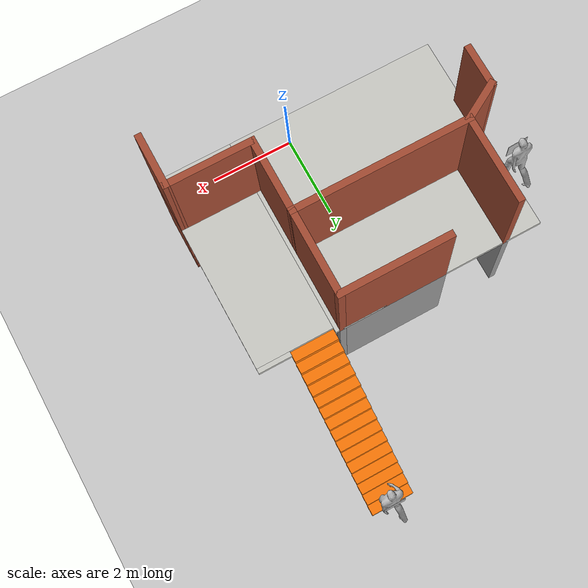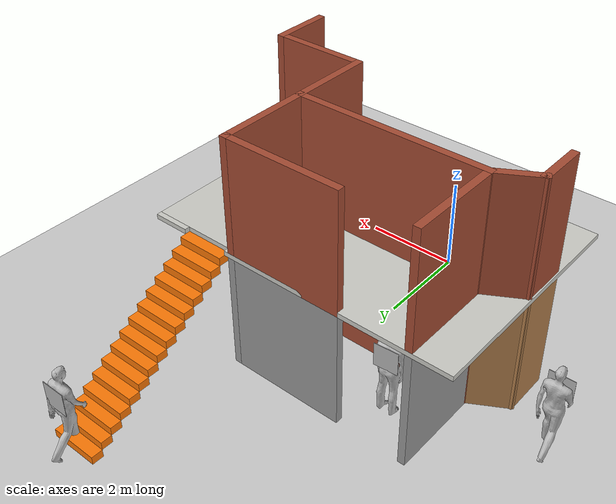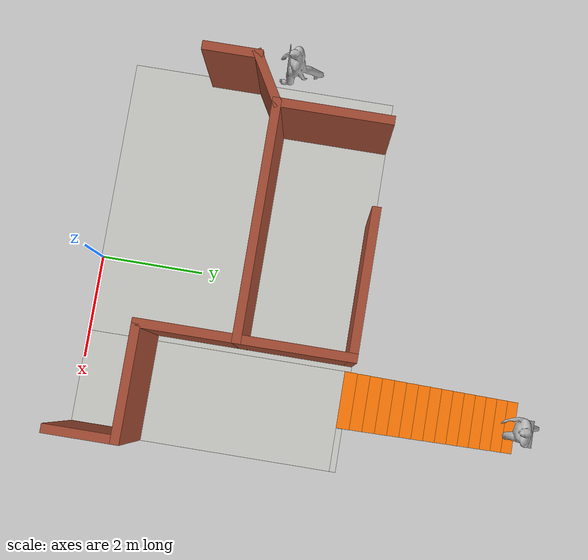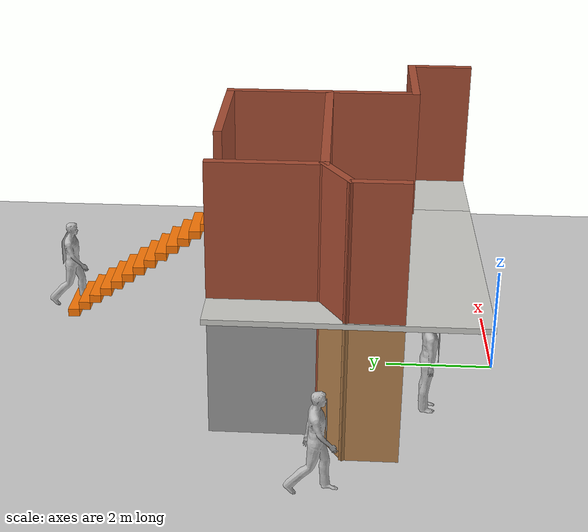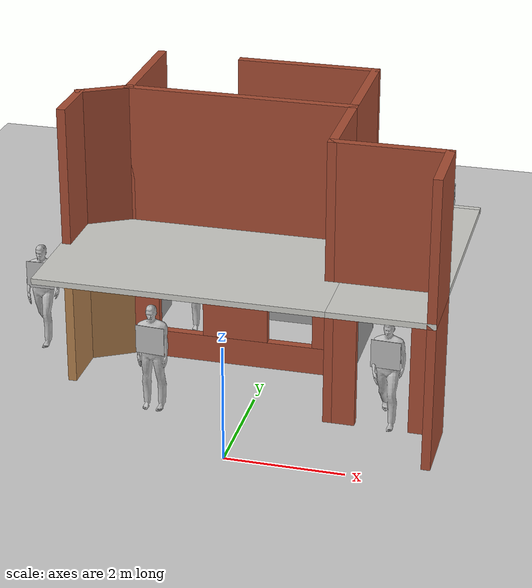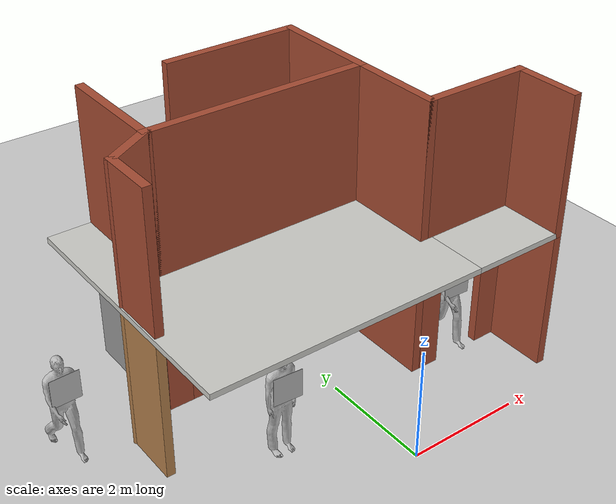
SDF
<sdf version="1.7">
 <world name="default">
  <light name="sun" type="directional">
   <pose>0 0 10 0 -0 0</pose>
   <diffuse>0.8 0.8 0.8 1</diffuse>
   <specular>0.2 0.2 0.2 1</specular>
   <attenuation>
    <range>1000</range>
    <constant>0.9</constant>
    <linear>0.01</linear>
    <quadratic>0.001</quadratic>
   </attenuation>
   <direction>-0.5 0.1 -0.9</direction>
   <spot><inner_angle>0</inner_angle><outer_angle>0</outer_angle><falloff>0</falloff></spot>
  </light>
  <model name="ground_plane">
   <static>1</static>
   <link name="link">
    <collision name="collision">
     <geometry><plane><normal>0 0 1</normal><size>100 100</size></plane></geometry>
     <surface>
      <contact><collide_bitmask>65535</collide_bitmask></contact>
      <friction><ode><mu>100</mu><mu2>50</mu2></ode></friction>
     </surface>
    </collision>
    <visual name="visual">
     <cast_shadows>0</cast_shadows>
     <geometry><plane><normal>0 0 1</normal><size>100 100</size></plane></geometry>
     <material>
      <script><uri>file://media/materials/scripts/gazebo.material</uri><name>Gazebo/Grey</name></script>
     </material>
    </visual>
   </link>
  </model>
  <gravity>0 0 -9.8</gravity>
  <magnetic_field>6e-06 2.3e-05 -4.2e-05</magnetic_field>
  <atmosphere type="adiabatic"/>
  <physics type="ode">
   <max_step_size>0.001</max_step_size>
   <real_time_factor>1</real_time_factor>
   <real_time_update_rate>1000</real_time_update_rate>
  </physics>
  <scene><ambient>0.4 0.4 0.4 1</ambient><background>0.7 0.7 0.7 1</background><shadows>1</shadows></scene>
  <spherical_coordinates>
   <surface_model>EARTH_WGS84</surface_model>
   <latitude_deg>0</latitude_deg>
   <longitude_deg>0</longitude_deg>
   <elevation>0</elevation>
   <heading_deg>0</heading_deg>
  </spherical_coordinates>
  <model name="project_world">
   <model name="mymodel">
    <pose>0.520959 0.586828 -0.493273 0 -0 0</pose>
    <link name="Floor_2">
     <pose>0 -1.69628 2.5 0 -0 0</pose>
     <visual name="Floor_2_Visual_0">
      <pose>-0.878545 0 0.05 0 -0 0</pose>
      <geometry><box><size>4.85648 4.7 0.1</size></box></geometry>
      <material>
       <script><uri>file://media/materials/scripts/gazebo.material</uri><name>Gazebo/CeilingTiled</name></script>
       <ambient>1 1 1 1</ambient>
      </material>
      <meta><layer>1</layer></meta>
     </visual>
     <collision name="Floor_2_Collision_0">
      <geometry><box><size>4.85648 4.7 0.1</size></box></geometry>
      <pose>-0.878545 0 0.05 0 -0 0</pose>
     </collision>
     <visual name="Floor_2_Visual_1">
      <pose>2.42824 -0.05372 0.05 0 -0 0</pose>
      <geometry><box><size>1.75709 4.59256 0.1</size></box></geometry>
      <material>
       <script><uri>file://media/materials/scripts/gazebo.material</uri><name>Gazebo/CeilingTiled</name></script>
       <ambient>1 1 1 1</ambient>
      </material>
      <meta><layer>1</layer></meta>
     </visual>
     <collision name="Floor_2_Collision_1">
      <geometry><box><size>1.75709 4.59256 0.1</size></box></geometry>
      <pose>2.42824 -0.05372 0.05 0 -0 0</pose>
     </collision>
     <visual name="Floor_2_Visual_2">
      <pose>2.92824 2.29628 0.05 0 -0 0</pose>
      <geometry><box><size>0.757089 0.10744 0.1</size></box></geometry>
      <material>
       <script><uri>file://media/materials/scripts/gazebo.material</uri><name>Gazebo/CeilingTiled</name></script>
       <ambient>1 1 1 1</ambient>
      </material>
      <meta><layer>1</layer></meta>
     </visual>
     <collision name="Floor_2_Collision_2">
      <geometry><box><size>0.757089 0.10744 0.1</size></box></geometry>
      <pose>2.92824 2.29628 0.05 0 -0 0</pose>
     </collision>
    </link>
    <link name="Stairs_2">
     <visual name="Stairs_2_Visual_0">
      <pose>2.0497 3.92961 0.083333 0 -0 0</pose>
      <geometry><box><size>1 0.233333 0.166667</size></box></geometry>
      <material>
       <script><uri>file://media/materials/scripts/gazebo.material</uri><name>Gazebo/Grey</name></script>
       <ambient>0.996078 0.47451 0.0196078 1</ambient>
      </material>
      <meta><layer>0</layer></meta>
     </visual>
     <collision name="Stairs_2_Collision_0">
      <geometry><box><size>1 0.233333 0.166667</size></box></geometry>
      <pose>2.0497 3.92961 0.083333 0 -0 0</pose>
     </collision>
     <visual name="Stairs_2_Visual_1">
      <pose>2.0497 3.69628 0.25 0 -0 0</pose>
      <geometry><box><size>1 0.233333 0.166667</size></box></geometry>
      <material>
       <script><uri>file://media/materials/scripts/gazebo.material</uri><name>Gazebo/Grey</name></script>
       <ambient>0.996078 0.47451 0.0196078 1</ambient>
      </material>
      <meta><layer>0</layer></meta>
     </visual>
     <collision name="Stairs_2_Collision_1">
      <geometry><box><size>1 0.233333 0.166667</size></box></geometry>
      <pose>2.0497 3.69628 0.25 0 -0 0</pose>
     </collision>
     <visual name="Stairs_2_Visual_2">
      <pose>2.0497 3.46295 0.416667 0 -0 0</pose>
      <geometry><box><size>1 0.233333 0.166667</size></box></geometry>
      <material>
       <script><uri>file://media/materials/scripts/gazebo.material</uri><name>Gazebo/Grey</name></script>
       <ambient>0.996078 0.47451 0.0196078 1</ambient>
      </material>
      <meta><layer>0</layer></meta>
     </visual>
     <collision name="Stairs_2_Collision_2">
      <geometry><box><size>1 0.233333 0.166667</size></box></geometry>
      <pose>2.0497 3.46295 0.416667 0 -0 0</pose>
     </collision>
     <visual name="Stairs_2_Visual_3">
      <pose>2.0497 3.22961 0.583333 0 -0 0</pose>
      <geometry><box><size>1 0.233333 0.166667</size></box></geometry>
      <material>
       <script><uri>file://media/materials/scripts/gazebo.material</uri><name>Gazebo/Grey</name></script>
       <ambient>0.996078 0.47451 0.0196078 1</ambient>
      </material>
      <meta><layer>0</layer></meta>
     </visual>
     <collision name="Stairs_2_Collision_3">
      <geometry><box><size>1 0.233333 0.166667</size></box></geometry>
      <pose>2.0497 3.22961 0.583333 0 -0 0</pose>
     </collision>
     <visual name="Stairs_2_Visual_4">
      <pose>2.0497 2.99628 0.75 0 -0 0</pose>
      <geometry><box><size>1 0.233333 0.166667</size></box></geometry>
      <material>
       <script><uri>file://media/materials/scripts/gazebo.material</uri><name>Gazebo/Grey</name></script>
       <ambient>0.996078 0.47451 0.0196078 1</ambient>
      </material>
      <meta><layer>0</layer></meta>
     </visual>
     <collision name="Stairs_2_Collision_4">
      <geometry><box><size>1 0.233333 0.166667</size></box></geometry>
      <pose>2.0497 2.99628 0.75 0 -0 0</pose>
     </collision>
     <visual name="Stairs_2_Visual_5">
      <pose>2.0497 2.76295 0.916667 0 -0 0</pose>
      <geometry><box><size>1 0.233333 0.166667</size></box></geometry>
      <material>
       <script><uri>file://media/materials/scripts/gazebo.material</uri><name>Gazebo/Grey</name></script>
       <ambient>0.996078 0.47451 0.0196078 1</ambient>
      </material>
      <meta><layer>0</layer></meta>
     </visual>
     <collision name="Stairs_2_Collision_5">
      <geometry><box><size>1 0.233333 0.166667</size></box></geometry>
      <pose>2.0497 2.76295 0.916667 0 -0 0</pose>
     </collision>
     <visual name="Stairs_2_Visual_6">
      <pose>2.0497 2.52961 1.08333 0 -0 0</pose>
      <geometry><box><size>1 0.233333 0.166667</size></box></geometry>
      <material>
       <script><uri>file://media/materials/scripts/gazebo.material</uri><name>Gazebo/Grey</name></script>
       <ambient>0.996078 0.47451 0.0196078 1</ambient>
      </material>
      <meta><layer>0</layer></meta>
     </visual>
     <collision name="Stairs_2_Collision_6">
      <geometry><box><size>1 0.233333 0.166667</size></box></geometry>
      <pose>2.0497 2.52961 1.08333 0 -0 0</pose>
     </collision>
     <visual name="Stairs_2_Visual_7">
      <pose>2.0497 2.29628 1.25 0 -0 0</pose>
      <geometry><box><size>1 0.233333 0.166667</size></box></geometry>
      <material>
       <script><uri>file://media/materials/scripts/gazebo.material</uri><name>Gazebo/Grey</name></script>
       <ambient>0.996078 0.47451 0.0196078 1</ambient>
      </material>
      <meta><layer>0</layer></meta>
     </visual>
     <collision name="Stairs_2_Collision_7">
      <geometry><box><size>1 0.233333 0.166667</size></box></geometry>
      <pose>2.0497 2.29628 1.25 0 -0 0</pose>
     </collision>
     <visual name="Stairs_2_Visual_8">
      <pose>2.0497 2.06295 1.41667 0 -0 0</pose>
      <geometry><box><size>1 0.233333 0.166667</size></box></geometry>
      <material>
       <script><uri>file://media/materials/scripts/gazebo.material</uri><name>Gazebo/Grey</name></script>
       <ambient>0.996078 0.47451 0.0196078 1</ambient>
      </material>
      <meta><layer>0</layer></meta>
     </visual>
     <collision name="Stairs_2_Collision_8">
      <geometry><box><size>1 0.233333 0.166667</size></box></geometry>
      <pose>2.0497 2.06295 1.41667 0 -0 0</pose>
     </collision>
     <visual name="Stairs_2_Visual_9">
      <pose>2.0497 1.82961 1.58333 0 -0 0</pose>
      <geometry><box><size>1 0.233333 0.166667</size></box></geometry>
      <material>
       <script><uri>file://media/materials/scripts/gazebo.material</uri><name>Gazebo/Grey</name></script>
       <ambient>0.996078 0.47451 0.0196078 1</ambient>
      </material>
      <meta><layer>0</layer></meta>
     </visual>
     <collision name="Stairs_2_Collision_9">
      <geometry><box><size>1 0.233333 0.166667</size></box></geometry>
      <pose>2.0497 1.82961 1.58333 0 -0 0</pose>
     </collision>
     <visual name="Stairs_2_Visual_10">
      <pose>2.0497 1.59628 1.75 0 -0 0</pose>
      <geometry><box><size>1 0.233333 0.166667</size></box></geometry>
      <material>
       <script><uri>file://media/materials/scripts/gazebo.material</uri><name>Gazebo/Grey</name></script>
       <ambient>0.996078 0.47451 0.0196078 1</ambient>
      </material>
      <meta><layer>0</layer></meta>
     </visual>
     <collision name="Stairs_2_Collision_10">
      <geometry><box><size>1 0.233333 0.166667</size></box></geometry>
      <pose>2.0497 1.59628 1.75 0 -0 0</pose>
     </collision>
     <visual name="Stairs_2_Visual_11">
      <pose>2.0497 1.36295 1.91667 0 -0 0</pose>
      <geometry><box><size>1 0.233333 0.166667</size></box></geometry>
      <material>
       <script><uri>file://media/materials/scripts/gazebo.material</uri><name>Gazebo/Grey</name></script>
       <ambient>0.996078 0.47451 0.0196078 1</ambient>
      </material>
      <meta><layer>0</layer></meta>
     </visual>
     <collision name="Stairs_2_Collision_11">
      <geometry><box><size>1 0.233333 0.166667</size></box></geometry>
      <pose>2.0497 1.36295 1.91667 0 -0 0</pose>
     </collision>
     <visual name="Stairs_2_Visual_12">
      <pose>2.0497 1.12961 2.08333 0 -0 0</pose>
      <geometry><box><size>1 0.233333 0.166667</size></box></geometry>
      <material>
       <script><uri>file://media/materials/scripts/gazebo.material</uri><name>Gazebo/Grey</name></script>
       <ambient>0.996078 0.47451 0.0196078 1</ambient>
      </material>
      <meta><layer>0</layer></meta>
     </visual>
     <collision name="Stairs_2_Collision_12">
      <geometry><box><size>1 0.233333 0.166667</size></box></geometry>
      <pose>2.0497 1.12961 2.08333 0 -0 0</pose>
     </collision>
     <visual name="Stairs_2_Visual_13">
      <pose>2.0497 0.89628 2.25 0 -0 0</pose>
      <geometry><box><size>1 0.233333 0.166667</size></box></geometry>
      <material>
       <script><uri>file://media/materials/scripts/gazebo.material</uri><name>Gazebo/Grey</name></script>
       <ambient>0.996078 0.47451 0.0196078 1</ambient>
      </material>
      <meta><layer>0</layer></meta>
     </visual>
     <collision name="Stairs_2_Collision_13">
      <geometry><box><size>1 0.233333 0.166667</size></box></geometry>
      <pose>2.0497 0.89628 2.25 0 -0 0</pose>
     </collision>
     <visual name="Stairs_2_Visual_14">
      <pose>2.0497 0.662947 2.41667 0 -0 0</pose>
      <geometry><box><size>1 0.233333 0.166667</size></box></geometry>
      <material>
       <script><uri>file://media/materials/scripts/gazebo.material</uri><name>Gazebo/Grey</name></script>
       <ambient>0.996078 0.47451 0.0196078 1</ambient>
      </material>
      <meta><layer>0</layer></meta>
     </visual>
     <collision name="Stairs_2_Collision_14">
      <geometry><box><size>1 0.233333 0.166667</size></box></geometry>
      <pose>2.0497 0.662947 2.41667 0 -0 0</pose>
     </collision>
    </link>
    <link name="Wall_0">
     <collision name="Wall_0_Collision">
      <geometry><box><size>1 0.15 2.5</size></box></geometry>
      <pose>0 0 1.25 0 -0 0</pose>
     </collision>
     <visual name="Wall_0_Visual">
      <pose>0 0 1.25 0 -0 0</pose>
      <geometry><box><size>1 0.15 2.5</size></box></geometry>
      <material>
       <script><uri>file://media/materials/scripts/gazebo.material</uri><name>Gazebo/Wood</name></script>
       <ambient>1 1 1 1</ambient>
      </material>
      <meta><layer>0</layer></meta>
     </visual>
     <pose>-3.20433 -2.12128 0 0 -0 1.5708</pose>
    </link>
    <link name="Wall_1">
     <collision name="Wall_1_Collision">
      <geometry><box><size>1 0.15 2.5</size></box></geometry>
      <pose>0 0 1.25 0 -0 0</pose>
     </collision>
     <visual name="Wall_1_Visual">
      <pose>0 0 1.25 0 -0 0</pose>
      <geometry><box><size>1 0.15 2.5</size></box></geometry>
      <material>
       <script><uri>file://media/materials/scripts/gazebo.material</uri><name>Gazebo/Wood</name></script>
       <ambient>1 1 1 1</ambient>
      </material>
      <meta><layer>0</layer></meta>
     </visual>
     <pose>-2.83627 -1.48378 0 0 -0 0.523599</pose>
    </link>
    <link name="Wall_10">
     <collision name="Wall_10_Collision">
      <geometry><box><size>2 0.15 2.5</size></box></geometry>
      <pose>0 0 1.25 0 -0 0</pose>
     </collision>
     <visual name="Wall_10_Visual">
      <pose>0 0 1.25 0 -0 0</pose>
      <geometry><box><size>2 0.15 2.5</size></box></geometry>
      <material>
       <script><uri>file://media/materials/scripts/gazebo.material</uri><name>Gazebo/Grey</name></script>
       <ambient>1 1 1 1</ambient>
      </material>
      <meta><layer>0</layer></meta>
     </visual>
     <pose>-2.46821 -0.34628 0 0 -0 1.5708</pose>
    </link>
    <link name="Wall_2">
     <pose>-0.543213 -1.27128 0 0 -0 0</pose>
     <visual name="Wall_2_Visual_0">
      <pose>-1.73056 0 1.25 0 -0 0</pose>
      <geometry><box><size>0.538878 0.15 2.5</size></box></geometry>
      <material>
       <script><uri>file://media/materials/scripts/gazebo.material</uri><name>Gazebo/Bricks</name></script>
       <ambient>1 1 1 1</ambient>
      </material>
      <meta><layer>0</layer></meta>
     </visual>
     <collision name="Wall_2_Collision_0">
      <geometry><box><size>0.538878 0.15 2.5</size></box></geometry>
      <pose>-1.73056 0 1.25 0 -0 0</pose>
     </collision>
     <visual name="Wall_2_Visual_1">
      <pose>0.269439 0 0.25 0 -0 0</pose>
      <geometry><box><size>3.46112 0.15 0.5</size></box></geometry>
      <material>
       <script><uri>file://media/materials/scripts/gazebo.material</uri><name>Gazebo/Bricks</name></script>
       <ambient>1 1 1 1</ambient>
      </material>
      <meta><layer>0</layer></meta>
     </visual>
     <collision name="Wall_2_Collision_1">
      <geometry><box><size>3.46112 0.15 0.5</size></box></geometry>
      <pose>0.269439 0 0.25 0 -0 0</pose>
     </collision>
     <visual name="Wall_2_Visual_2">
      <pose>-0.081122 0 1.5 0 -0 0</pose>
      <geometry><box><size>1.16 0.15 2</size></box></geometry>
      <material>
       <script><uri>file://media/materials/scripts/gazebo.material</uri><name>Gazebo/Bricks</name></script>
       <ambient>1 1 1 1</ambient>
      </material>
      <meta><layer>0</layer></meta>
     </visual>
     <collision name="Wall_2_Collision_2">
      <geometry><box><size>1.16 0.15 2</size></box></geometry>
      <pose>-0.081122 0 1.5 0 -0 0</pose>
     </collision>
     <visual name="Wall_2_Visual_3">
      <pose>1.64944 0 1.5 0 -0 0</pose>
      <geometry><box><size>0.701122 0.15 2</size></box></geometry>
      <material>
       <script><uri>file://media/materials/scripts/gazebo.material</uri><name>Gazebo/Bricks</name></script>
       <ambient>1 1 1 1</ambient>
      </material>
      <meta><layer>0</layer></meta>
     </visual>
     <collision name="Wall_2_Collision_3">
      <geometry><box><size>0.701122 0.15 2</size></box></geometry>
      <pose>1.64944 0 1.5 0 -0 0</pose>
     </collision>
     <visual name="Wall_2_Visual_4">
      <pose>-1.06112 0 1.9 0 -0 0</pose>
      <geometry><box><size>0.8 0.15 1.2</size></box></geometry>
      <material>
       <script><uri>file://media/materials/scripts/gazebo.material</uri><name>Gazebo/Bricks</name></script>
       <ambient>1 1 1 1</ambient>
      </material>
      <meta><layer>0</layer></meta>
     </visual>
     <collision name="Wall_2_Collision_4">
      <geometry><box><size>0.8 0.15 1.2</size></box></geometry>
      <pose>-1.06112 0 1.9 0 -0 0</pose>
     </collision>
     <visual name="Wall_2_Visual_5">
      <pose>0.898878 0 1.9 0 -0 0</pose>
      <geometry><box><size>0.8 0.15 1.2</size></box></geometry>
      <material>
       <script><uri>file://media/materials/scripts/gazebo.material</uri><name>Gazebo/Bricks</name></script>
       <ambient>1 1 1 1</ambient>
      </material>
      <meta><layer>0</layer></meta>
     </visual>
     <collision name="Wall_2_Collision_5">
      <geometry><box><size>0.8 0.15 1.2</size></box></geometry>
      <pose>0.898878 0 1.9 0 -0 0</pose>
     </collision>
    </link>
    <link name="Wall_3">
     <collision name="Wall_3_Collision">
      <geometry><box><size>1.75 0.15 2.5</size></box></geometry>
      <pose>0 0 1.25 0 -0 0</pose>
     </collision>
     <visual name="Wall_3_Visual">
      <pose>0 0 1.25 0 -0 0</pose>
      <geometry><box><size>1.75 0.15 2.5</size></box></geometry>
      <material>
       <script><uri>file://media/materials/scripts/gazebo.material</uri><name>Gazebo/Bricks</name></script>
       <ambient>1 1 1 1</ambient>
      </material>
      <meta><layer>0</layer></meta>
     </visual>
     <pose>1.38179 -2.07128 0 0 -0 -1.5708</pose>
    </link>
    <link name="Wall_30">
     <collision name="Wall_30_Collision">
      <geometry><box><size>1 0.15 2.5</size></box></geometry>
      <pose>0 0 1.25 0 -0 0</pose>
     </collision>
     <visual name="Wall_30_Visual">
      <pose>0 0 1.25 0 -0 0</pose>
      <geometry><box><size>1 0.15 2.5</size></box></geometry>
      <material>
       <script><uri>file://media/materials/scripts/gazebo.material</uri><name>Gazebo/Bricks</name></script>
       <ambient>1 1 1 1</ambient>
      </material>
      <meta><layer>1</layer></meta>
     </visual>
     <pose>-3.20433 -2.12128 2.5 0 -0 1.5708</pose>
    </link>
    <link name="Wall_31">
     <collision name="Wall_31_Collision">
      <geometry><box><size>1 0.15 2.5</size></box></geometry>
      <pose>0 0 1.25 0 -0 0</pose>
     </collision>
     <visual name="Wall_31_Visual">
      <pose>0 0 1.25 0 -0 0</pose>
      <geometry><box><size>1 0.15 2.5</size></box></geometry>
      <material>
       <script><uri>file://media/materials/scripts/gazebo.material</uri><name>Gazebo/Bricks</name></script>
       <ambient>1 1 1 1</ambient>
      </material>
      <meta><layer>1</layer></meta>
     </visual>
     <pose>-2.83627 -1.48378 2.5 0 -0 0.523599</pose>
    </link>
    <link name="Wall_32">
     <collision name="Wall_32_Collision">
      <geometry><box><size>4 0.15 2.5</size></box></geometry>
      <pose>0 0 1.25 0 -0 0</pose>
     </collision>
     <visual name="Wall_32_Visual">
      <pose>0 0 1.25 0 -0 0</pose>
      <geometry><box><size>4 0.15 2.5</size></box></geometry>
      <material>
       <script><uri>file://media/materials/scripts/gazebo.material</uri><name>Gazebo/Bricks</name></script>
       <ambient>1 1 1 1</ambient>
      </material>
      <meta><layer>1</layer></meta>
     </visual>
     <pose>-0.543213 -1.27128 2.5 0 -0 0</pose>
    </link>
    <link name="Wall_33">
     <collision name="Wall_33_Collision">
      <geometry><box><size>1.75 0.15 2.5</size></box></geometry>
      <pose>0 0 1.25 0 -0 0</pose>
     </collision>
     <visual name="Wall_33_Visual">
      <pose>0 0 1.25 0 -0 0</pose>
      <geometry><box><size>1.75 0.15 2.5</size></box></geometry>
      <material>
       <script><uri>file://media/materials/scripts/gazebo.material</uri><name>Gazebo/Bricks</name></script>
       <ambient>1 1 1 1</ambient>
      </material>
      <meta><layer>1</layer></meta>
     </visual>
     <pose>1.38179 -2.07128 2.5 0 -0 -1.5708</pose>
    </link>
    <link name="Wall_34">
     <collision name="Wall_34_Collision">
      <geometry><box><size>2 0.15 2.5</size></box></geometry>
      <pose>0 0 1.25 0 -0 0</pose>
     </collision>
     <visual name="Wall_34_Visual">
      <pose>0 0 1.25 0 -0 0</pose>
      <geometry><box><size>2 0.15 2.5</size></box></geometry>
      <material>
       <script><uri>file://media/materials/scripts/gazebo.material</uri><name>Gazebo/Bricks</name></script>
       <ambient>1 1 1 1</ambient>
      </material>
      <meta><layer>1</layer></meta>
     </visual>
     <pose>2.30679 -2.87128 2.5 0 -0 0</pose>
    </link>
    <link name="Wall_35">
     <collision name="Wall_35_Collision">
      <geometry><box><size>1.25 0.15 2.5</size></box></geometry>
      <pose>0 0 1.25 0 -0 0</pose>
     </collision>
     <visual name="Wall_35_Visual">
      <pose>0 0 1.25 0 -0 0</pose>
      <geometry><box><size>1.25 0.15 2.5</size></box></geometry>
      <material>
       <script><uri>file://media/materials/scripts/gazebo.material</uri><name>Gazebo/Bricks</name></script>
       <ambient>1 1 1 1</ambient>
      </material>
      <meta><layer>1</layer></meta>
     </visual>
     <pose>3.23179 -3.42128 2.5 0 -0 -1.5708</pose>
    </link>
    <link name="Wall_36">
     <collision name="Wall_36_Collision">
      <geometry><box><size>2 0.15 2.5</size></box></geometry>
      <pose>0 0 1.25 0 -0 0</pose>
     </collision>
     <visual name="Wall_36_Visual">
      <pose>0 0 1.25 0 -0 0</pose>
      <geometry><box><size>2 0.15 2.5</size></box></geometry>
      <material>
       <script><uri>file://media/materials/scripts/gazebo.material</uri><name>Gazebo/Bricks</name></script>
       <ambient>1 1 1 1</ambient>
      </material>
      <meta><layer>1</layer></meta>
     </visual>
     <pose>1.38179 -0.34628 2.5 0 -0 1.5708</pose>
    </link>
    <link name="Wall_37">
     <collision name="Wall_37_Collision">
      <geometry><box><size>2.5 0.15 2.5</size></box></geometry>
      <pose>0 0 1.25 0 -0 0</pose>
     </collision>
     <visual name="Wall_37_Visual">
      <pose>0 0 1.25 0 -0 0</pose>
      <geometry><box><size>2.5 0.15 2.5</size></box></geometry>
      <material>
       <script><uri>file://media/materials/scripts/gazebo.material</uri><name>Gazebo/Bricks</name></script>
       <ambient>1 1 1 1</ambient>
      </material>
      <meta><layer>1</layer></meta>
     </visual>
     <pose>0.206787 0.57872 2.5 0 -0 3.14159</pose>
    </link>
    <link name="Wall_38">
     <collision name="Wall_38_Collision">
      <geometry><box><size>2 0.15 2.5</size></box></geometry>
      <pose>0 0 1.25 0 -0 0</pose>
     </collision>
     <visual name="Wall_38_Visual">
      <pose>0 0 1.25 0 -0 0</pose>
      <geometry><box><size>2 0.15 2.5</size></box></geometry>
      <material>
       <script><uri>file://media/materials/scripts/gazebo.material</uri><name>Gazebo/Bricks</name></script>
       <ambient>1 1 1 1</ambient>
      </material>
      <meta><layer>1</layer></meta>
     </visual>
     <pose>-2.46821 -0.34628 2.5 0 -0 1.5708</pose>
    </link>
    <link name="Wall_4">
     <pose>2.30679 -2.87128 0 0 -0 0</pose>
     <visual name="Wall_4_Visual_0">
      <pose>-0.730561 0 1.25 0 -0 0</pose>
      <geometry><box><size>0.538878 0.15 2.5</size></box></geometry>
      <material>
       <script><uri>file://media/materials/scripts/gazebo.material</uri><name>Gazebo/Bricks</name></script>
       <ambient>1 1 1 1</ambient>
      </material>
      <meta><layer>0</layer></meta>
     </visual>
     <collision name="Wall_4_Collision_0">
      <geometry><box><size>0.538878 0.15 2.5</size></box></geometry>
      <pose>-0.730561 0 1.25 0 -0 0</pose>
     </collision>
     <visual name="Wall_4_Visual_1">
      <pose>0.719439 0 1.25 0 -0 0</pose>
      <geometry><box><size>0.561122 0.15 2.5</size></box></geometry>
      <material>
       <script><uri>file://media/materials/scripts/gazebo.material</uri><name>Gazebo/Bricks</name></script>
       <ambient>1 1 1 1</ambient>
      </material>
      <meta><layer>0</layer></meta>
     </visual>
     <collision name="Wall_4_Collision_1">
      <geometry><box><size>0.561122 0.15 2.5</size></box></geometry>
      <pose>0.719439 0 1.25 0 -0 0</pose>
     </collision>
     <visual name="Wall_4_Visual_2">
      <pose>-0.011122 0 2.25 0 -0 0</pose>
      <geometry><box><size>0.9 0.15 0.5</size></box></geometry>
      <material>
       <script><uri>file://media/materials/scripts/gazebo.material</uri><name>Gazebo/Bricks</name></script>
       <ambient>1 1 1 1</ambient>
      </material>
      <meta><layer>0</layer></meta>
     </visual>
     <collision name="Wall_4_Collision_2">
      <geometry><box><size>0.9 0.15 0.5</size></box></geometry>
      <pose>-0.011122 0 2.25 0 -0 0</pose>
     </collision>
    </link>
    <link name="Wall_5">
     <collision name="Wall_5_Collision">
      <geometry><box><size>1.25 0.15 2.5</size></box></geometry>
      <pose>0 0 1.25 0 -0 0</pose>
     </collision>
     <visual name="Wall_5_Visual">
      <pose>0 0 1.25 0 -0 0</pose>
      <geometry><box><size>1.25 0.15 2.5</size></box></geometry>
      <material>
       <script><uri>file://media/materials/scripts/gazebo.material</uri><name>Gazebo/Bricks</name></script>
       <ambient>1 1 1 1</ambient>
      </material>
      <meta><layer>0</layer></meta>
     </visual>
     <pose>3.23179 -3.42128 0 0 -0 -1.5708</pose>
    </link>
    <link name="Wall_7">
     <collision name="Wall_7_Collision">
      <geometry><box><size>2 0.15 2.5</size></box></geometry>
      <pose>0 0 1.25 0 -0 0</pose>
     </collision>
     <visual name="Wall_7_Visual">
      <pose>0 0 1.25 0 -0 0</pose>
      <geometry><box><size>2 0.15 2.5</size></box></geometry>
      <material>
       <script><uri>file://media/materials/scripts/gazebo.material</uri><name>Gazebo/Grey</name></script>
       <ambient>1 1 1 1</ambient>
      </material>
      <meta><layer>0</layer></meta>
     </visual>
     <pose>1.38179 -0.34628 0 0 -0 1.5708</pose>
    </link>
    <link name="Wall_8">
     <collision name="Wall_8_Collision">
      <geometry><box><size>2.5 0.15 2.5</size></box></geometry>
      <pose>0 0 1.25 0 -0 0</pose>
     </collision>
     <visual name="Wall_8_Visual">
      <pose>0 0 1.25 0 -0 0</pose>
      <geometry><box><size>2.5 0.15 2.5</size></box></geometry>
      <material>
       <script><uri>file://media/materials/scripts/gazebo.material</uri><name>Gazebo/Grey</name></script>
       <ambient>1 1 1 1</ambient>
      </material>
      <meta><layer>0</layer></meta>
     </visual>
     <pose>0.206787 0.57872 0 0 -0 3.14159</pose>
    </link>
    <static>1</static>
   </model>
   <model name="person_standing">
    <link name="link">
     <inertial>
      <pose>0 -0.1 0.95 0 -0 0</pose>
      <mass>80</mass>
      <inertia><ixx>24.88</ixx><ixy>0</ixy><ixz>0</ixz><iyy>25.73</iyy><iyz>0</iyz><izz>2.48</izz></inertia>
     </inertial>
     <collision name="bottom">
      <pose>0 -0.1 0.01 0 -0 0</pose>
      <geometry><box><size>0.5 0.35 0.02</size></box></geometry>
     </collision>
     <collision name="person">
      <pose>0 0 0.02 0.04 -0 0</pose>
      <geometry><mesh><uri>model://person_standing/meshes/standing.dae</uri></mesh></geometry>
     </collision>
     <visual name="visual">
      <pose>0 0 0.02 0.04 -0 0</pose>
      <geometry><mesh><uri>model://person_standing/meshes/standing.dae</uri></mesh></geometry>
     </visual>
    </link>
    <pose>-1.0408 -2.4929 -0.493273 0 -0 0</pose>
   </model>
   <model name="person_standing_0">
    <link name="link">
     <inertial>
      <pose>0 -0.1 0.95 0 -0 0</pose>
      <mass>80</mass>
      <inertia><ixx>24.88</ixx><ixy>0</ixy><ixz>0</ixz><iyy>25.73</iyy><iyz>0</iyz><izz>2.48</izz></inertia>
     </inertial>
     <collision name="bottom">
      <pose>0 -0.1 0.01 0 -0 0</pose>
      <geometry><box><size>0.5 0.35 0.02</size></box></geometry>
     </collision>
     <collision name="person">
      <pose>0 0 0.02 0.04 -0 0</pose>
      <geometry><mesh><uri>model://person_standing/meshes/standing.dae</uri></mesh></geometry>
     </collision>
     <visual name="visual">
      <pose>0 0 0.02 0.04 -0 0</pose>
      <geometry><mesh><uri>model://person_standing/meshes/standing.dae</uri></mesh></geometry>
     </visual>
    </link>
    <pose>-1.03623 0.480798 -0.493273 0 -0 0</pose>
   </model>
   <model name="person_walking">
    <link name="link">
     <inertial>
      <pose>0 0 0.95 0 -0 0</pose>
      <mass>80</mass>
      <inertia><ixx>27.82</ixx><ixy>0</ixy><ixz>0</ixz><iyy>24.88</iyy><iyz>0</iyz><izz>4.57</izz></inertia>
     </inertial>
     <collision name="bottom">
      <pose>0 0 0.01 0 -0 0</pose>
      <geometry><box><size>0.35 0.75 0.02</size></box></geometry>
     </collision>
     <collision name="person">
      <pose>0 0 -0.02 0 -0 0</pose>
      <geometry><mesh><uri>model://person_walking/meshes/walking.dae</uri></mesh></geometry>
     </collision>
     <visual name="visual">
      <pose>0 0 -0.02 0 -0 0</pose>
      <geometry><mesh><uri>model://person_walking/meshes/walking.dae</uri></mesh></geometry>
     </visual>
    </link>
    <pose>-3.67752 -0.6323 -0.493273 0 -0 0</pose>
   </model>
   <model name="person_walking_0">
    <link name="link">
     <inertial>
      <pose>0 0 0.95 0 -0 0</pose>
      <mass>80</mass>
      <inertia><ixx>27.82</ixx><ixy>0</ixy><ixz>0</ixz><iyy>24.88</iyy><iyz>0</iyz><izz>4.57</izz></inertia>
     </inertial>
     <collision name="bottom">
      <pose>0 0 0.01 0 -0 0</pose>
      <geometry><box><size>0.35 0.75 0.02</size></box></geometry>
     </collision>
     <collision name="person">
      <pose>0 0 -0.02 0 -0 0</pose>
      <geometry><mesh><uri>model://person_walking/meshes/walking.dae</uri></mesh></geometry>
     </collision>
     <visual name="visual">
      <pose>0 0 -0.02 0 -0 0</pose>
      <geometry><mesh><uri>model://person_walking/meshes/walking.dae</uri></mesh></geometry>
     </visual>
    </link>
    <pose>2.85494 -2.03132 -0.493273 0 -0 0</pose>
   </model>
   <model name="person_walking_1">
    <link name="link">
     <inertial>
      <pose>0 0 0.95 0 -0 0</pose>
      <mass>80</mass>
      <inertia><ixx>27.82</ixx><ixy>0</ixy><ixz>0</ixz><iyy>24.88</iyy><iyz>0</iyz><izz>4.57</izz></inertia>
     </inertial>
     <collision name="bottom">
      <pose>0 0 0.01 0 -0 0</pose>
      <geometry><box><size>0.35 0.75 0.02</size></box></geometry>
     </collision>
     <collision name="person">
      <pose>0 0 -0.02 0 -0 0</pose>
      <geometry><mesh><uri>model://person_walking/meshes/walking.dae</uri></mesh></geometry>
     </collision>
     <visual name="visual">
      <pose>0 0 -0.02 0 -0 0</pose>
      <geometry><mesh><uri>model://person_walking/meshes/walking.dae</uri></mesh></geometry>
     </visual>
    </link>
    <pose>2.62373 4.63301 -0.493273 0 -0 0</pose>
   </model>
   <model name="qr code(F)">
    <static>1</static>
    <link name="link">
     <visual name="visual">
      <geometry><mesh><uri>model://qr code(F)/meshes/qrcode0.dae</uri></mesh></geometry>
     </visual>
    </link>
    <pose>-3.66026 -0.825774 0.607343 0 0 -1.5408</pose>
   </model>
   <model name="qr code(F)_0">
    <static>1</static>
    <link name="link">
     <visual name="visual">
      <geometry><mesh><uri>model://qr code(F)/meshes/qrcode0.dae</uri></mesh></geometry>
     </visual>
    </link>
    <pose>2.63356 4.74012 0.554673 0 0 -1.56899</pose>
   </model>
   <model name="qr code(F)_1">
    <static>1</static>
    <link name="link">
     <visual name="visual">
      <geometry><mesh><uri>model://qr code(F)/meshes/qrcode0.dae</uri></mesh></geometry>
     </visual>
    </link>
    <pose>-1.02745 -2.74659 0.605093 0 0 -1.64183</pose>
   </model>
   <model name="qr code(F)_2">
    <static>1</static>
    <link name="link">
     <visual name="visual">
      <geometry><mesh><uri>model://qr code(F)/meshes/qrcode0.dae</uri></mesh></geometry>
     </visual>
    </link>
    <pose>2.83784 -2.24022 0.582815 0 0 -1.61539</pose>
   </model>
   <model name="qr code(F)_3">
    <static>1</static>
    <link name="link">
     <visual name="visual">
      <geometry><mesh><uri>model://qr code(F)/meshes/qrcode0.dae</uri></mesh></geometry>
     </visual>
    </link>
    <pose>-1.02876 0.528341 0.609709 0 0 -1.49509</pose>
   </model>
   <static>0</static>
   <pose>-0.540815 3.91561 0.493273 0 -0 0</pose>
  </model>
 </world>
</sdf>
